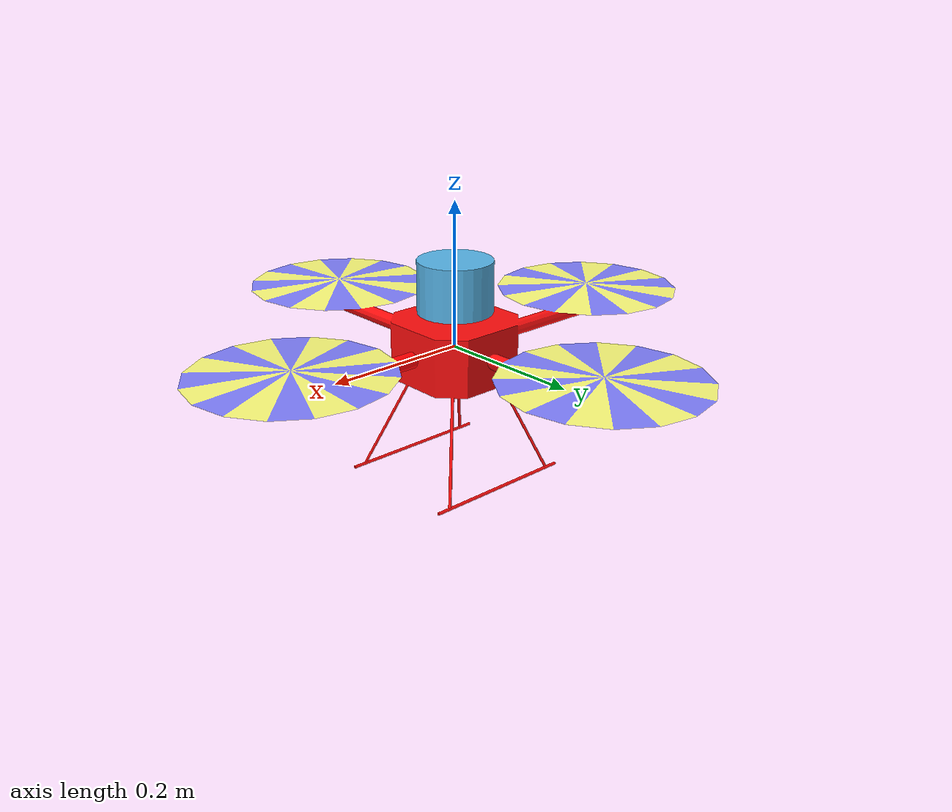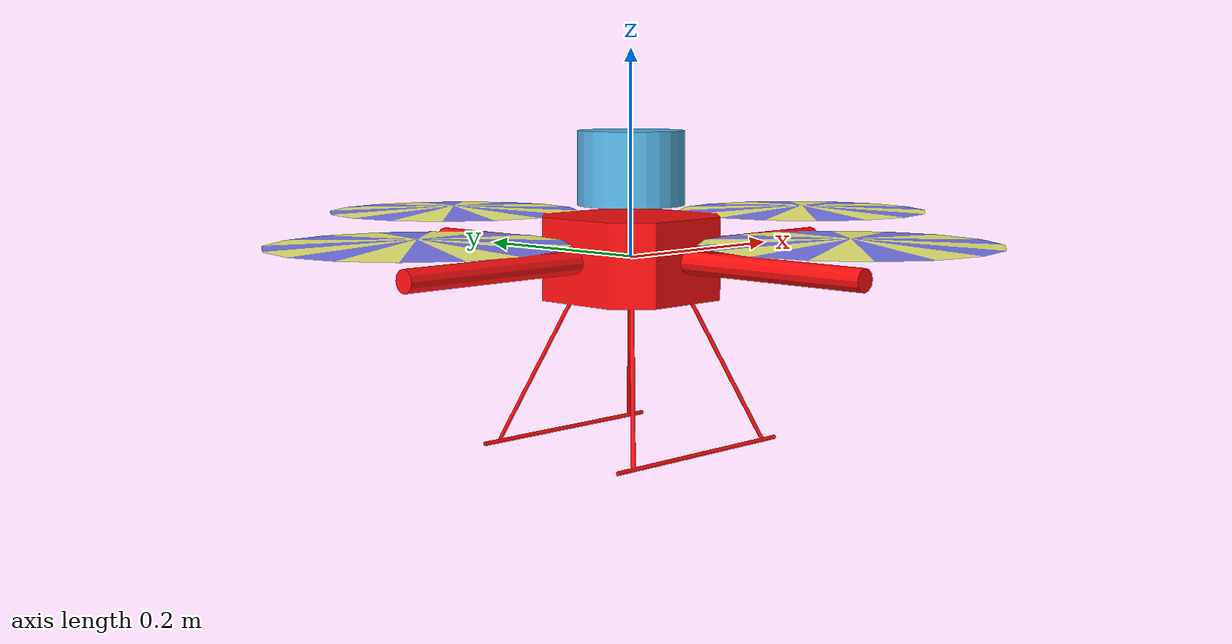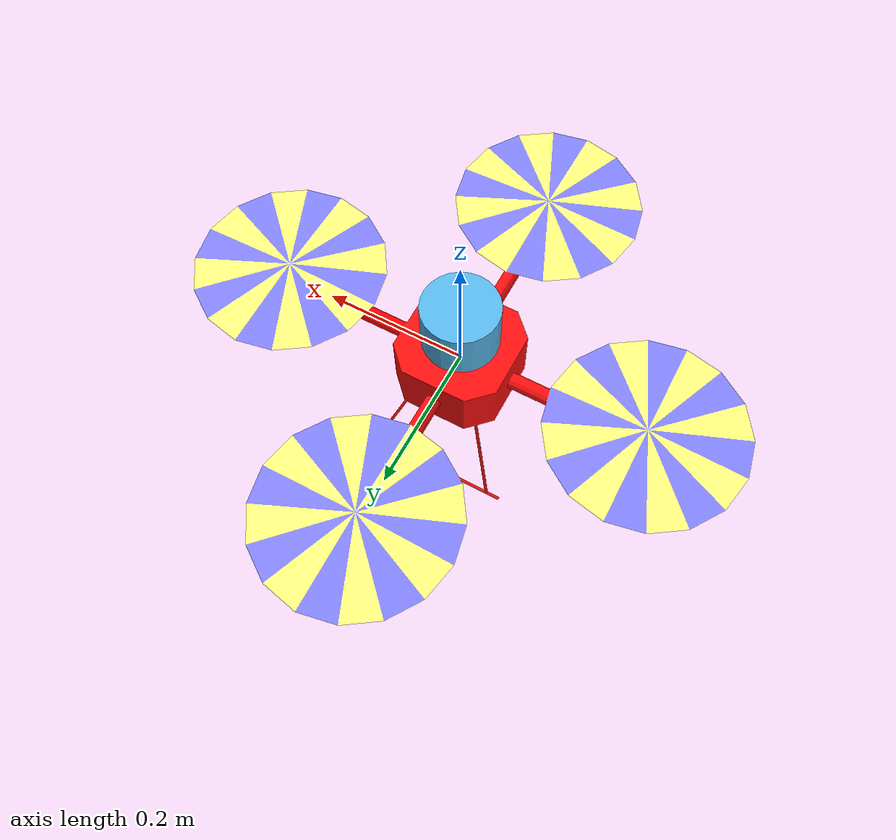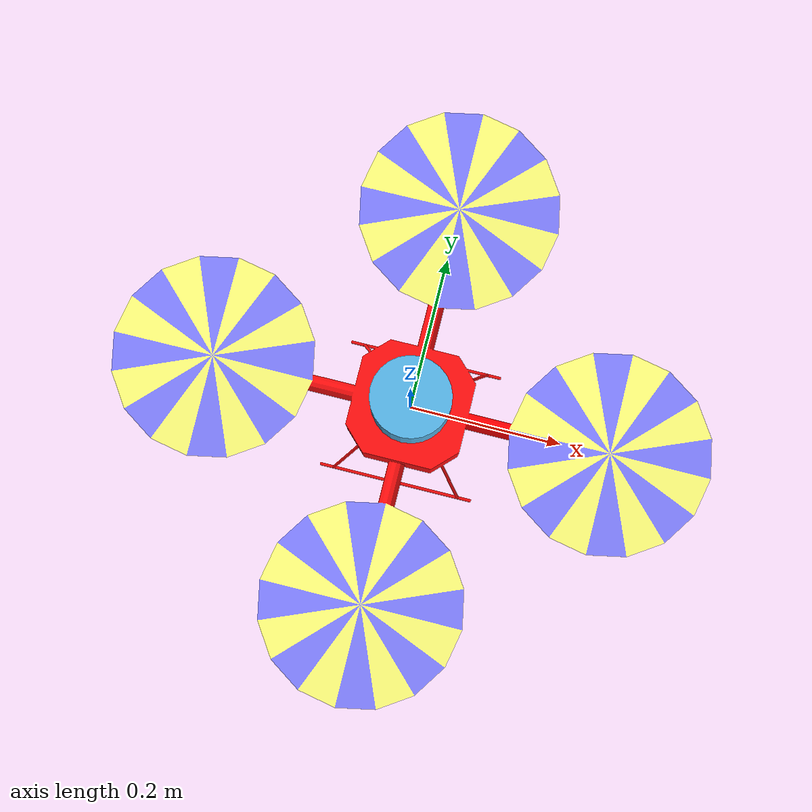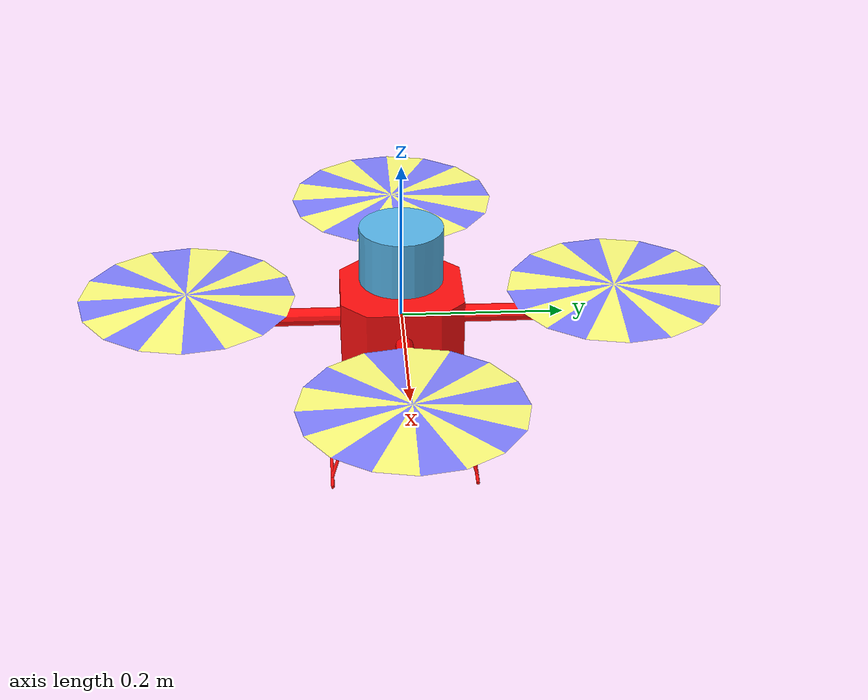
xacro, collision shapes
<?xml version="1.0"?>

<robot name="quadrotor" xmlns:xacro="http://www.ros.org/wiki/xacro">

    <xacro:property name="M_PI" value="3.1415926535897931" />

    <!-- Included URDF Files -->
    <xacro:include filename="$(find hector_quadrotor_description)/urdf/quadrotor_base.urdf.xacro" />

    <!-- Instantiate quadrotor_base_macro once (has no parameters atm) -->
    <xacro:quadrotor_base_macro />

    <xacro:include filename="$(find velodyne_description)/urdf/VLP-16.urdf.xacro"/>
    <VLP-16 parent="base_link" name="velodyne" topic="/velodyne_points" hz="10" samples="440" gpu="true">
        <origin xyz="0 0 0.05" rpy="0 0 0" />
    </VLP-16>

    <!-- stereo camera -->
    <xacro:include filename="$(find hector_sensors_description)/urdf/generic_stereo_camera.urdf.xacro"/>
    <xacro:generic_stereo_camera name="stereo_camera" parent="base_link" ros_topic="image_raw" cam_info_topic="camera_info" update_rate="20.0" res_x="752" res_y="480" image_format="L8" hfov="80.0" baseline="0.11">
        <origin xyz="0.26 0.055 -0.06" rpy="0 0 0"/>
    </xacro:generic_stereo_camera>
    <!-- kinect -->
    <xacro:include filename="$(find my_sim)/urdf/rgbd_camera.urdf.xacro"/>
    <xacro:rgbd_camera name="kinect" parent="base_link">
        <origin xyz="0.26 0.055 -0.06" rpy="0 0 0"/>
    </xacro:rgbd_camera>
</robot>

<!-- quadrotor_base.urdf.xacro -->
<robot xmlns:xacro="http://www.ros.org/wiki/xacro">

  <xacro:property name="pi" value="3.1415926535897931" />

  <!-- Main quadrotor link -->
  <xacro:macro name="quadrotor_base_macro">
    <link name="base_link">
      <inertial>
        <mass value="1.477" />
        <origin xyz="0 0 0" />
        <inertia ixx="0.01152" ixy="0.0" ixz="0.0" iyy="0.01152" iyz="0.0" izz="0.0218" />
      </inertial>

      <visual>
        <origin xyz="0 0 0" rpy="0 0 0" />
        <geometry>
          <mesh filename="package://hector_quadrotor_description/meshes/quadrotor/quadrotor_base.dae"/>
        </geometry>
      </visual>

      <collision>
        <origin xyz="0 0 0" rpy="0 0 0" />
        <geometry>
          <mesh filename="package://hector_quadrotor_description/meshes/quadrotor/quadrotor_base.stl"/>
        </geometry>
      </collision>
    </link>

    <!-- Sonar height sensor -->

  </xacro:macro>
</robot>

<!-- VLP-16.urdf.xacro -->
<robot xmlns:xacro="http://www.ros.org/wiki/xacro" name="VLP-16">
  <xacro:property name="M_PI" value="3.1415926535897931" />
  <xacro:macro name="VLP-16" params="*origin is_sim:=true parent:=base_link name:=velodyne tf_prefix:='' topic:=/velodyne_points organize_cloud:=false hz:=10 lasers:=16 samples:=1875 collision_range:=0.3 min_range:=0.0 max_range:=100.0 noise:=0.008 min_angle:=-${M_PI} max_angle:=${M_PI} gpu:=false">

    <joint name="${name}_base_mount_joint" type="fixed">
      <xacro:insert_block name="origin" />
      <parent link="${parent}"/>
      <child link="${name}_base_link"/>
    </joint>

    <link name="${name}_base_link">
      <inertial>
        <mass value="0.83"/>
        <origin xyz="0 0 0.03585"/>
        <inertia ixx="${(0.83 * (3.0*0.0516*0.0516 + 0.0717*0.0717)) / 12.0}" ixy="0" ixz="0"
          iyy="${(0.83 * (3.0*0.0516*0.0516 + 0.0717*0.0717)) / 12.0}" iyz="0"
          izz="${0.5 * 0.83 * (0.0516*0.0516)}"/>
      </inertial>
      <visual>
        <geometry>
          <mesh filename="package://velodyne_description/meshes/VLP16_base_1.dae" />
        </geometry>
      </visual>
      <visual>
        <geometry>
          <mesh filename="package://velodyne_description/meshes/VLP16_base_2.dae" />
        </geometry>
      </visual>
      <collision>
        <origin rpy="0 0 0" xyz="0 0 0.03585"/>
        <geometry>
          <cylinder radius="0.0516" length="0.0717"/>
        </geometry>
      </collision>
    </link>

    <joint name="${name}_base_scan_joint" type="fixed" >
      <origin xyz="0 0 0.0377" rpy="0 0 0" />
      <parent link="${name}_base_link" />
      <child link="${name}"/>
    </joint>

    <link name="${name}">
      <inertial>
        <mass value="0.01"/>
        <origin xyz="0 0 0"/>
        <inertia ixx="1e-7" ixy="0" ixz="0" iyy="1e-7" iyz="0" izz="1e-7"/>
      </inertial>
      <visual>
        <origin xyz="0 0 -0.0377" />
        <geometry>
          <mesh filename="package://velodyne_description/meshes/VLP16_scan.dae" />
        </geometry>
      </visual>
      <collision>
        <geometry>
          <sphere radius="0"/>
        </geometry>
      </collision>
    </link>

    <!-- Gazebo requires the velodyne_gazebo_plugins package -->
    <xacro:if value="${is_sim}">
        <gazebo reference="${name}">
            <xacro:if value="${gpu}">
                <sensor type="gpu_ray" name="${name}-VLP16">
                <pose>0 0 0 0 0 0</pose>
                <visualize>false</visualize>
                <update_rate>${hz}</update_rate>
                <ray>
                    <scan>
                    <horizontal>
                        <samples>${samples}</samples>
                        <resolution>1</resolution>
                        <min_angle>${min_angle}</min_angle>
                        <max_angle>${max_angle}</max_angle>
                    </horizontal>
                    <vertical>
                        <samples>${lasers}</samples>
                        <resolution>1</resolution>
                        <min_angle>-${15.0*M_PI/180.0}</min_angle>
                        <max_angle> ${15.0*M_PI/180.0}</max_angle>
                    </vertical>
                    </scan>
                    <range>
                    <min>${collision_range}</min>
                    <max>${max_range+1}</max>
                    <resolution>0.001</resolution>
                    </range>
                    <noise>
                    <type>gaussian</type>
                    <mean>0.0</mean>
                    <stddev>0.0</stddev>
                    </noise>
                </ray>
                <plugin name="gazebo_ros_laser_controller" filename="libgazebo_ros_velodyne_laser.so">
                    <ros>
                    <namespace>/${name}</namespace>
                    <remapping>~/out:=${topic}</remapping>
                    </ros>
                    <tf_prefix>${tf_prefix}</tf_prefix>
                    <frame_name>${name}</frame_name>
                    <organize_cloud>${organize_cloud}</organize_cloud>
                    <min_range>${min_range}</min_range>
                    <max_range>${max_range}</max_range>
                    <gaussian_noise>${noise}</gaussian_noise>
                </plugin>
                </sensor>
            </xacro:if>
            <xacro:unless value="${gpu}">
                <sensor type="ray" name="${name}-VLP16">
                <pose>0 0 0 0 0 0</pose>
                <visualize>false</visualize>
                <update_rate>${hz}</update_rate>
                <ray>
                    <scan>
                    <horizontal>
                        <samples>${samples}</samples>
                        <resolution>1</resolution>
                        <min_angle>${min_angle}</min_angle>
                        <max_angle>${max_angle}</max_angle>
                    </horizontal>
                    <vertical>
                        <samples>${lasers}</samples>
                        <resolution>1</resolution>
                        <min_angle>-${15.0*M_PI/180.0}</min_angle>
                        <max_angle> ${15.0*M_PI/180.0}</max_angle>
                    </vertical>
                    </scan>
                    <range>
                    <min>${collision_range}</min>
                    <max>${max_range+1}</max>
                    <resolution>0.001</resolution>
                    </range>
                    <noise>
                    <type>gaussian</type>
                    <mean>0.0</mean>
                    <stddev>0.0</stddev>
                    </noise>
                </ray>
                <plugin name="gazebo_ros_laser_controller" filename="libgazebo_ros_velodyne_laser.so">
                    <ros>
                    <namespace>/${name}</namespace>
                    <remapping>~/out:=${topic}</remapping>
                    </ros>
                    <tf_prefix>${tf_prefix}</tf_prefix>
                    <frame_name>${name}</frame_name>
                    <organize_cloud>${organize_cloud}</organize_cloud>
                    <min_range>${min_range}</min_range>
                    <max_range>${max_range}</max_range>
                    <gaussian_noise>${noise}</gaussian_noise>
                </plugin>
                </sensor>
            </xacro:unless>
        </gazebo>
    </xacro:if>

  </xacro:macro>
</robot>

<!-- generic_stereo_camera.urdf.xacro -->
<robot xmlns:xacro="http://www.ros.org/wiki/xacro">

  <xacro:property name="M_PI" value="3.1415926535897931" />

  <xacro:macro name="generic_stereo_camera" params="name parent *origin ros_topic cam_info_topic update_rate res_x res_y image_format hfov baseline">

  <!-- Stereo Camera -->
  <joint name="${name}_left_camera_frame_joint" type="fixed">
    <!-- optical frame collocated with tilting DOF -->
    <xacro:insert_block name="origin" />
    <parent link="${parent}"/>
    <child link="${name}_left_camera_frame"/>
  </joint>
  <link name="${name}_left_camera_frame">
  </link>
  <joint name="${name}_left_camera_optical_frame_joint" type="fixed">
    <origin xyz="0 0 0" rpy="-1.5708 0.0 -1.5708" />
    <parent link="${name}_left_camera_frame" />
    <child link="${name}_left_camera_optical_frame"/>
  </joint>
  <link name="${name}_left_camera_optical_frame"/>
  <gazebo reference="${name}_left_camera_frame">
    <sensor type="multicamera" name="stereo_camera">
      <!-- see MultiSenseSLPlugin.h for available modes -->
      <update_rate>${update_rate}</update_rate>
      <camera name="left">
        <!-- Spec sheet says 80deg X 45deg @ 1024x544pix.  Based on feedback
             from teams, we're instead doing 80deg X 80deg @ 800x800pix. -->
        <horizontal_fov>${hfov}</horizontal_fov>
        <image>
          <width>${res_x}</width>
          <height>${res_y}</height>
          <format>${image_format}</format>
        </image>
        <clip>
          <near>0.02</near>
          <far>300</far>
        </clip>
        <noise>
          <type>gaussian</type>
          <mean>0.0</mean>
          <stddev>0.007</stddev>
        </noise>
      </camera>
      <camera name="right">
        <pose>0 ${-baseline} 0 0 0 0</pose>
        <!-- Spec sheet says 80deg X 45deg @ 1024x544pix.  Based on feedback
             from teams, we're instead doing 80deg X 80deg @ 800x800pix. -->
        <horizontal_fov>${hfov}</horizontal_fov>
        <image>
          <width>${res_x}</width>
          <height>${res_y}</height>
          <format>${image_format}</format>
        </image>
        <clip>
          <near>0.02</near>
          <far>300</far>
        </clip>
        <noise>
          <type>gaussian</type>
          <mean>0.0</mean>
          <stddev>0.007</stddev>
        </noise>
      </camera>
      <plugin name="stereo_camera_controller" filename="libgazebo_ros_multicamera.so">
        <cameraName>${name}</cameraName>
        <imageTopicName>image_raw</imageTopicName>
        <cameraInfoTopicName>camera_info</cameraInfoTopicName>
        <frameName>${name}_left_camera_optical_frame</frameName>
        <hackBaseline>${baseline}</hackBaseline>
      </plugin>
    </sensor>
  </gazebo>

  <joint name="${name}_right_camera_frame_joint" type="fixed">
    <origin xyz="0.0 ${-baseline} -0.0"/>
    <parent link="${name}_left_camera_frame"/>
    <child link="${name}_right_camera_frame"/>
  </joint>
  <link name="${name}_right_camera_frame">
  </link>
  <joint name="${name}_right_camera_optical_frame_joint" type="fixed">
    <origin xyz="0 0 0" rpy="-1.5708 0.0 -1.5708" />
    <parent link="${name}_right_camera_frame" />
    <child link="${name}_right_camera_optical_frame"/>
  </joint>
  <link name="${name}_right_camera_optical_frame"/>

  </xacro:macro>

</robot>

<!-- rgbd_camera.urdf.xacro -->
<robot xmlns:xacro="http://ros.org/wiki/xacro">
  <xacro:property name="M_PI" value="3.1415926535897931"/>

  <xacro:macro name="rgbd_camera_model" params="name parent *origin">
    <joint name="${name}_joint" type="fixed">
      <xacro:insert_block name="origin"/>
      <parent link="${parent}"/>
      <child link="${name}_link"/>
    </joint>

    <link name="${name}_link"/>

    <joint name="${name}_optical_joint" type="fixed">
      <origin xyz="0 0 0" rpy="${-M_PI/2} 0.0 ${-M_PI/2}"/>
      <parent link="${name}_link"/>
      <child link="${name}_optical_frame"/>
    </joint>

    <link name="${name}_optical_frame"/>
  </xacro:macro>

  <xacro:macro name="rgbd_camera" params="name parent *origin">
    <xacro:rgbd_camera_model name="${name}" parent="${parent}">
      <xacro:insert_block name="origin"/>
    </xacro:rgbd_camera_model>

    <gazebo reference="${name}_link">
      <sensor type="depth" name="${name}">
        <update_rate>20</update_rate>
        <camera>
          <horizontal_fov>${60 * M_PI / 180.0}</horizontal_fov>
          <image>
            <format>B8G8R8</format>
            <width>640</width>
            <height>480</height>
          </image>
        </camera>
        <plugin name="${name}_rgbd_camera_cnotroller" filename="libgazebo_ros_openni_kinect.so">
          <imageTopicName>${name}/rgb/image_raw</imageTopicName>
          <cameraInfoTopicName>${name}/rgb/camera_info</cameraInfoTopicName>
          <depthImageTopicName>${name}/depth/image_raw</depthImageTopicName>
          <depthImageCameraInfoTopicName>${name}/depth/camera_info</depthImageCameraInfoTopicName>
          <pointCloudTopicName>${name}/depth/points</pointCloudTopicName>
          <frameName>${name}_optical_frame</frameName>
        </plugin>
      </sensor>
    </gazebo>
  </xacro:macro>
</robot>
